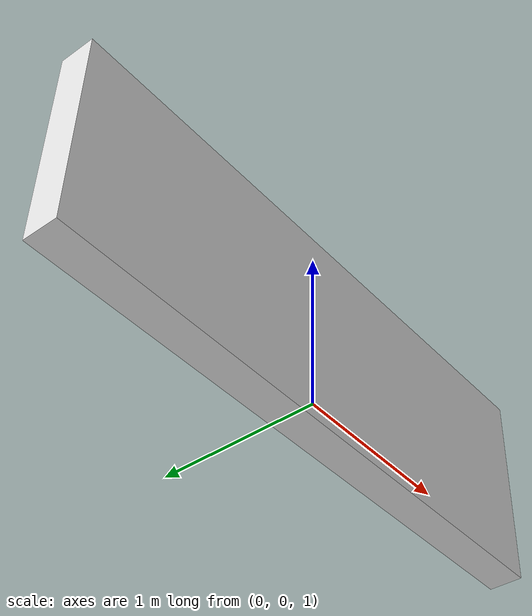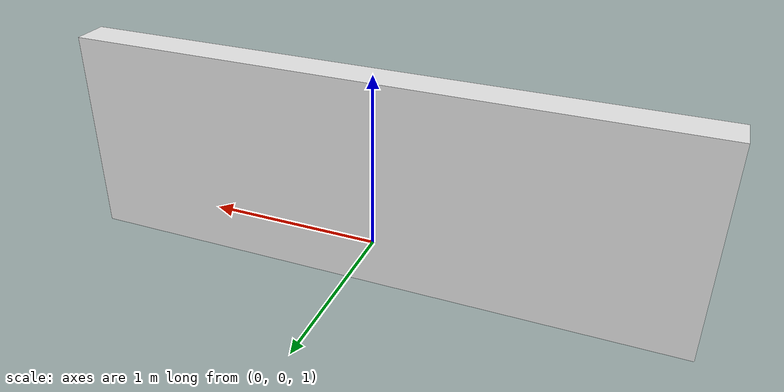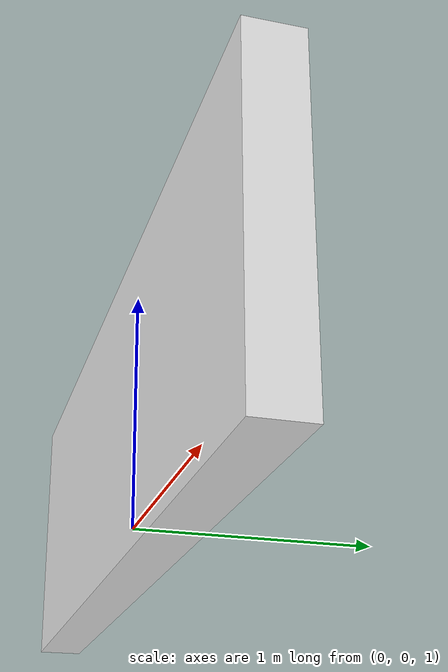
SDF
<?xml version="1.0" ?>
<sdf version="1.5">
  <model name="grey_wall">
    <static>true</static>
    <link name="link">
      <pose>0 0 1.4 0 0 0</pose>
      <collision name="collision">
        <geometry>
          <box>
            <size>3.5 0.2 1.2</size>
          </box>
        </geometry>
      </collision>
      <visual name="visual">
        <cast_shadows>false</cast_shadows>
        <geometry>
          <box>
            <size>3.5 0.2 1.2</size>
          </box>
        </geometry>

        <material>
          <ambient>0.8 0.8 0.8 1</ambient>
          <diffuse>0.9 0.9 0.9 1</diffuse>
          <specular>0.1 0.1 0.1 1</specular>
        </material>
      </visual>
    </link>
  </model>
</sdf>
